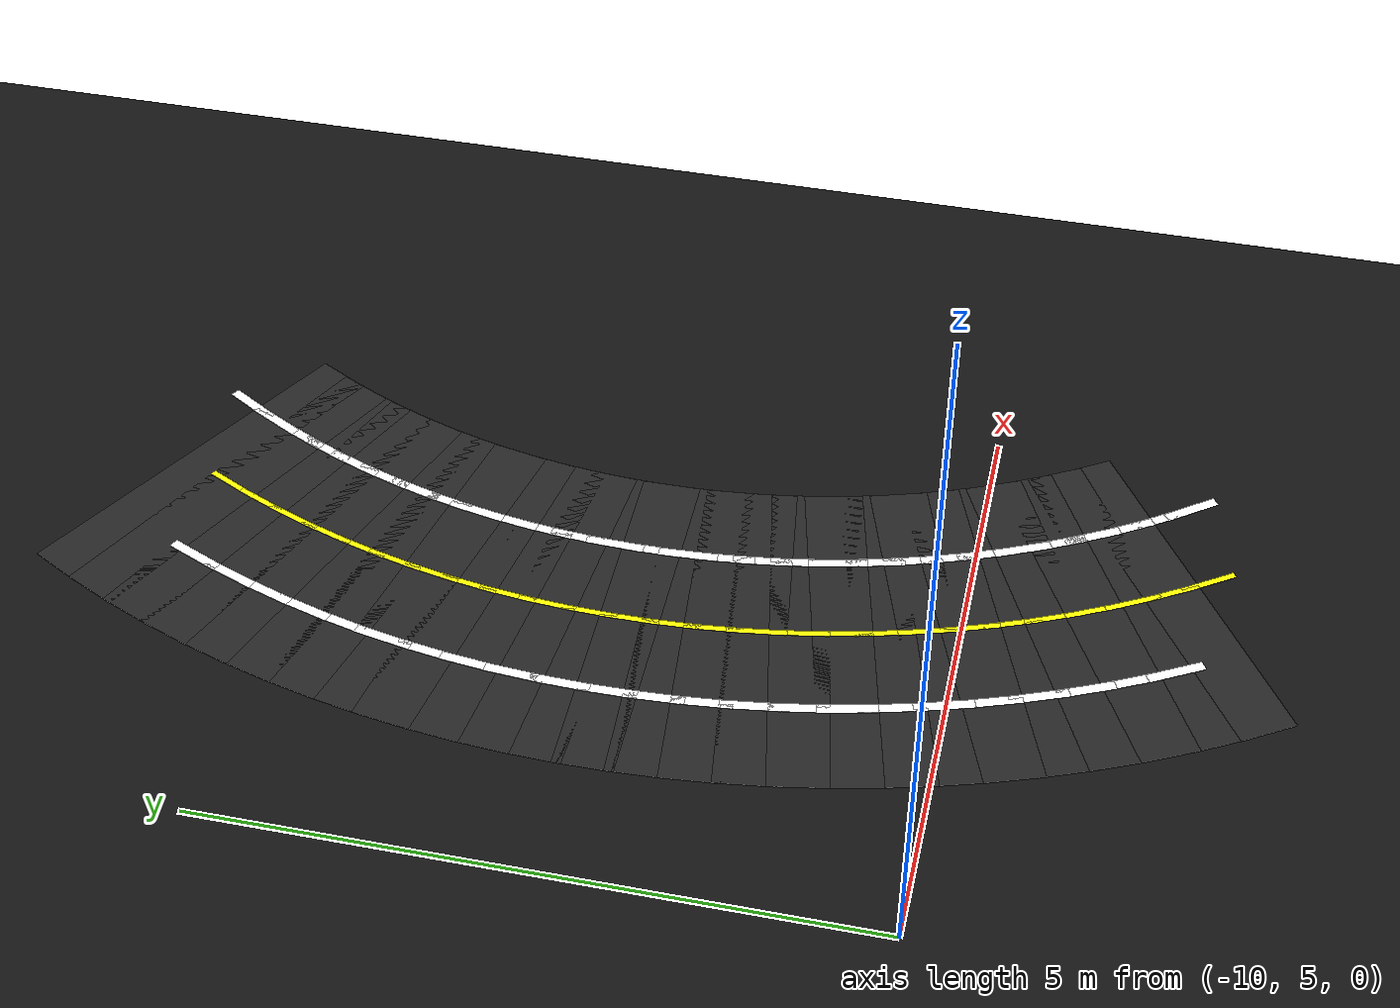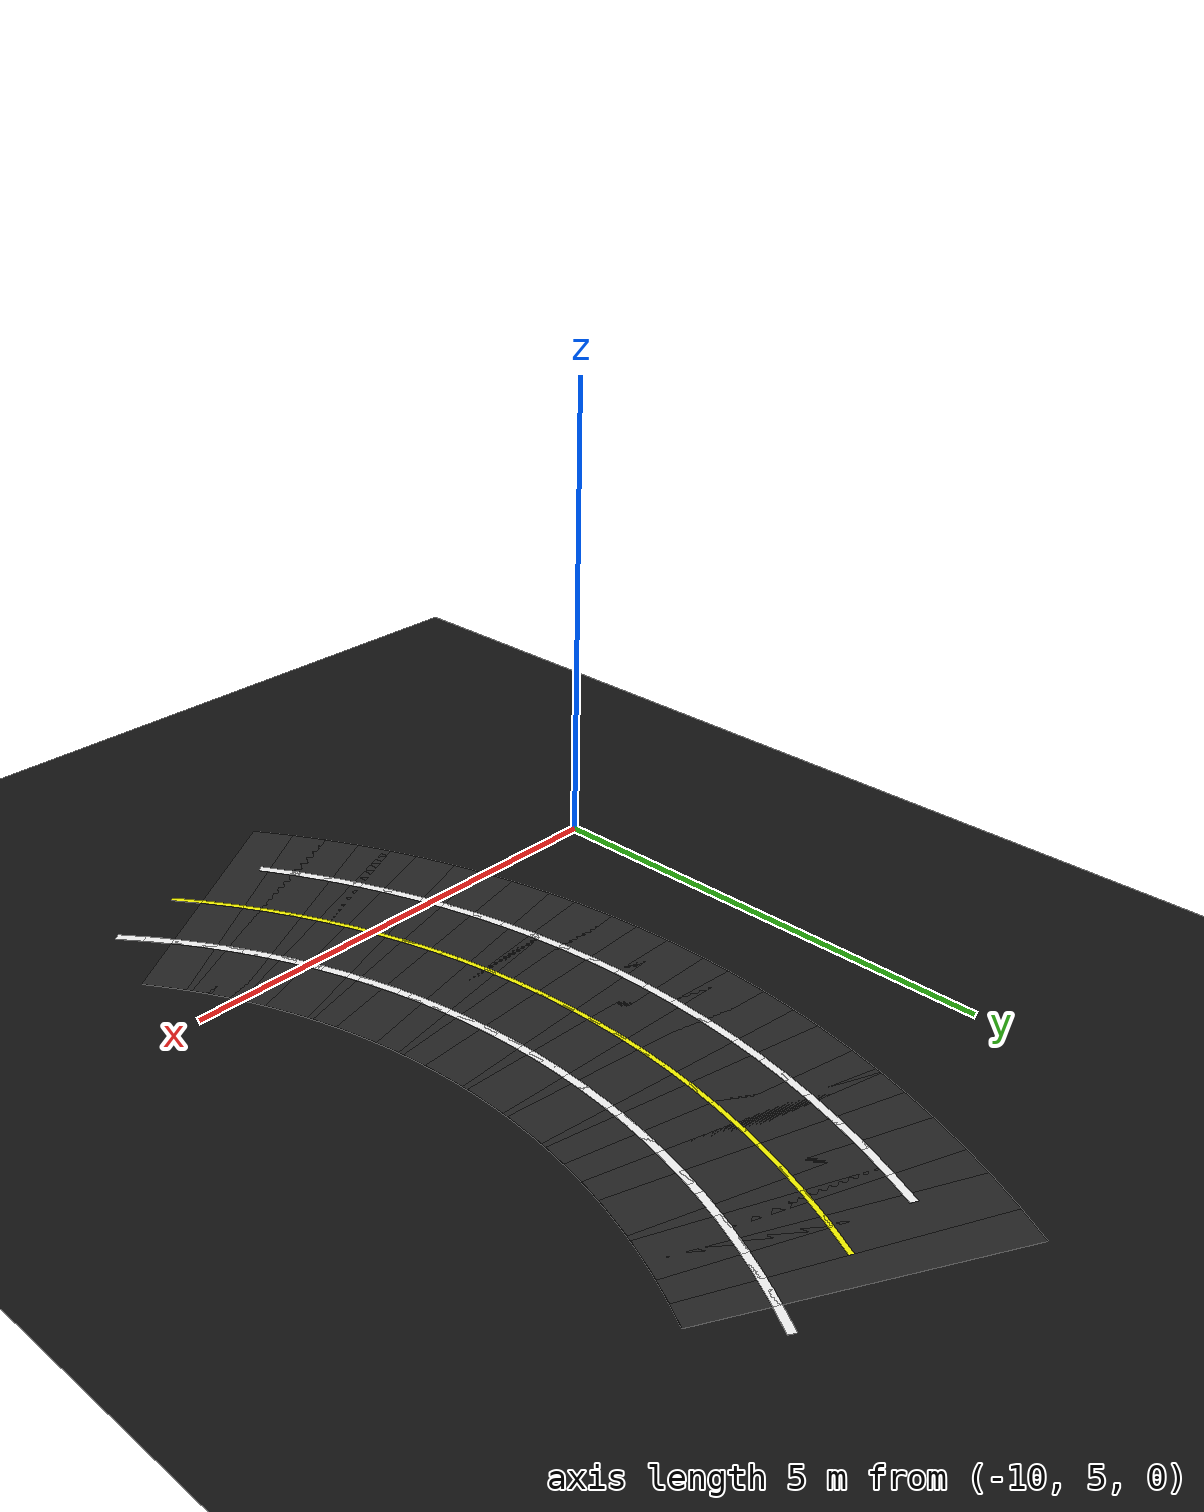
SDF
<sdf version="1.6">
 <world name="figure8_world">
  <model name="ground_plane">
   <static>true</static>
   <link name="link">
    <collision name="collision">
     <geometry><plane><normal>0 0 1</normal><size>100 100</size></plane></geometry>
    </collision>
    <visual name="visual">
     <geometry><plane><normal>0 0 1</normal><size>100 100</size></plane></geometry>
     <material><ambient>0.08 0.08 0.08 1</ambient><diffuse>0.08 0.08 0.08 1</diffuse></material>
    </visual>
   </link>
  </model>
  <model name="seg_00374">
   <static>true</static>
   <pose>-5.7977 10.9568 0.0030 0 0 4.1747</pose>
   <link name="link">
    <collision name="collision"><geometry><box><size>0.4500 0.0800 0.002</size></box></geometry></collision>
    <visual name="visual">
     <geometry><box><size>0.4500 0.0800 0.002</size></box></geometry>
     <material><ambient>1 1 1 1</ambient><diffuse>1 1 1 1</diffuse></material>
    </visual>
   </link>
  </model>
  <model name="seg_00376">
   <static>true</static>
   <pose>-6.5980 11.0659 0.0010 0 0 4.2169</pose>
   <link name="link">
    <collision name="collision"><geometry><box><size>0.4500 3.0000 0.002</size></box></geometry></collision>
    <visual name="visual">
     <geometry><box><size>0.4500 3.0000 0.002</size></box></geometry>
     <material><ambient>0.15 0.15 0.15 1</ambient><diffuse>0.15 0.15 0.15 1</diffuse></material>
    </visual>
   </link>
  </model>
  <model name="seg_00378">
   <static>true</static>
   <pose>-5.9382 10.7094 0.0030 0 0 4.2169</pose>
   <link name="link">
    <collision name="collision"><geometry><box><size>0.4500 0.0800 0.002</size></box></geometry></collision>
    <visual name="visual">
     <geometry><box><size>0.4500 0.0800 0.002</size></box></geometry>
     <material><ambient>1 1 1 1</ambient><diffuse>1 1 1 1</diffuse></material>
    </visual>
   </link>
  </model>
  <model name="seg_00380">
   <static>true</static>
   <pose>-6.7425 10.7846 0.0010 0 0 4.2591</pose>
   <link name="link">
    <collision name="collision"><geometry><box><size>0.4500 3.0000 0.002</size></box></geometry></collision>
    <visual name="visual">
     <geometry><box><size>0.4500 3.0000 0.002</size></box></geometry>
     <material><ambient>0.15 0.15 0.15 1</ambient><diffuse>0.15 0.15 0.15 1</diffuse></material>
    </visual>
   </link>
  </model>
  <model name="seg_00382">
   <static>true</static>
   <pose>-6.0682 10.4562 0.0030 0 0 4.2591</pose>
   <link name="link">
    <collision name="collision"><geometry><box><size>0.4500 0.0800 0.002</size></box></geometry></collision>
    <visual name="visual">
     <geometry><box><size>0.4500 0.0800 0.002</size></box></geometry>
     <material><ambient>1 1 1 1</ambient><diffuse>1 1 1 1</diffuse></material>
    </visual>
   </link>
  </model>
  <model name="seg_00383">
   <static>true</static>
   <pose>-6.7425 10.7846 0.0030 0 0 4.2591</pose>
   <link name="link">
    <collision name="collision"><geometry><box><size>0.4500 0.0500 0.002</size></box></geometry></collision>
    <visual name="visual">
     <geometry><box><size>0.4500 0.0500 0.002</size></box></geometry>
     <material><ambient>1 1 0 1</ambient><diffuse>1 1 0 1</diffuse></material>
    </visual>
   </link>
  </model>
  <model name="seg_00384">
   <static>true</static>
   <pose>-6.8750 10.4975 0.0010 0 0 4.3012</pose>
   <link name="link">
    <collision name="collision"><geometry><box><size>0.4500 3.0000 0.002</size></box></geometry></collision>
    <visual name="visual">
     <geometry><box><size>0.4500 3.0000 0.002</size></box></geometry>
     <material><ambient>0.15 0.15 0.15 1</ambient><diffuse>0.15 0.15 0.15 1</diffuse></material>
    </visual>
   </link>
  </model>
  <model name="seg_00385">
   <static>true</static>
   <pose>-7.5625 10.7972 0.0030 0 0 4.3012</pose>
   <link name="link">
    <collision name="collision"><geometry><box><size>0.4500 0.0800 0.002</size></box></geometry></collision>
    <visual name="visual">
     <geometry><box><size>0.4500 0.0800 0.002</size></box></geometry>
     <material><ambient>1 1 1 1</ambient><diffuse>1 1 1 1</diffuse></material>
    </visual>
   </link>
  </model>
  <model name="seg_00386">
   <static>true</static>
   <pose>-6.1875 10.1977 0.0030 0 0 4.3012</pose>
   <link name="link">
    <collision name="collision"><geometry><box><size>0.4500 0.0800 0.002</size></box></geometry></collision>
    <visual name="visual">
     <geometry><box><size>0.4500 0.0800 0.002</size></box></geometry>
     <material><ambient>1 1 1 1</ambient><diffuse>1 1 1 1</diffuse></material>
    </visual>
   </link>
  </model>
  <model name="seg_00387">
   <static>true</static>
   <pose>-6.8750 10.4975 0.0030 0 0 4.3012</pose>
   <link name="link">
    <collision name="collision"><geometry><box><size>0.4500 0.0500 0.002</size></box></geometry></collision>
    <visual name="visual">
     <geometry><box><size>0.4500 0.0500 0.002</size></box></geometry>
     <material><ambient>1 1 0 1</ambient><diffuse>1 1 0 1</diffuse></material>
    </visual>
   </link>
  </model>
  <model name="seg_00388">
   <static>true</static>
   <pose>-6.9952 10.2050 0.0010 0 0 4.3434</pose>
   <link name="link">
    <collision name="collision"><geometry><box><size>0.4500 3.0000 0.002</size></box></geometry></collision>
    <visual name="visual">
     <geometry><box><size>0.4500 3.0000 0.002</size></box></geometry>
     <material><ambient>0.15 0.15 0.15 1</ambient><diffuse>0.15 0.15 0.15 1</diffuse></material>
    </visual>
   </link>
  </model>
  <model name="seg_00389">
   <static>true</static>
   <pose>-7.6947 10.4755 0.0030 0 0 4.3434</pose>
   <link name="link">
    <collision name="collision"><geometry><box><size>0.4500 0.0800 0.002</size></box></geometry></collision>
    <visual name="visual">
     <geometry><box><size>0.4500 0.0800 0.002</size></box></geometry>
     <material><ambient>1 1 1 1</ambient><diffuse>1 1 1 1</diffuse></material>
    </visual>
   </link>
  </model>
  <model name="seg_00390">
   <static>true</static>
   <pose>-6.2957 9.9345 0.0030 0 0 4.3434</pose>
   <link name="link">
    <collision name="collision"><geometry><box><size>0.4500 0.0800 0.002</size></box></geometry></collision>
    <visual name="visual">
     <geometry><box><size>0.4500 0.0800 0.002</size></box></geometry>
     <material><ambient>1 1 1 1</ambient><diffuse>1 1 1 1</diffuse></material>
    </visual>
   </link>
  </model>
  <model name="seg_00391">
   <static>true</static>
   <pose>-6.9952 10.2050 0.0030 0 0 4.3434</pose>
   <link name="link">
    <collision name="collision"><geometry><box><size>0.4500 0.0500 0.002</size></box></geometry></collision>
    <visual name="visual">
     <geometry><box><size>0.4500 0.0500 0.002</size></box></geometry>
     <material><ambient>1 1 0 1</ambient><diffuse>1 1 0 1</diffuse></material>
    </visual>
   </link>
  </model>
  <model name="seg_00392">
   <static>true</static>
   <pose>-7.1030 9.9077 0.0010 0 0 4.3856</pose>
   <link name="link">
    <collision name="collision"><geometry><box><size>0.4500 3.0000 0.002</size></box></geometry></collision>
    <visual name="visual">
     <geometry><box><size>0.4500 3.0000 0.002</size></box></geometry>
     <material><ambient>0.15 0.15 0.15 1</ambient><diffuse>0.15 0.15 0.15 1</diffuse></material>
    </visual>
   </link>
  </model>
  <model name="seg_00393">
   <static>true</static>
   <pose>-7.8133 10.1484 0.0030 0 0 4.3856</pose>
   <link name="link">
    <collision name="collision"><geometry><box><size>0.4500 0.0800 0.002</size></box></geometry></collision>
    <visual name="visual">
     <geometry><box><size>0.4500 0.0800 0.002</size></box></geometry>
     <material><ambient>1 1 1 1</ambient><diffuse>1 1 1 1</diffuse></material>
    </visual>
   </link>
  </model>
  <model name="seg_00394">
   <static>true</static>
   <pose>-6.3927 9.6669 0.0030 0 0 4.3856</pose>
   <link name="link">
    <collision name="collision"><geometry><box><size>0.4500 0.0800 0.002</size></box></geometry></collision>
    <visual name="visual">
     <geometry><box><size>0.4500 0.0800 0.002</size></box></geometry>
     <material><ambient>1 1 1 1</ambient><diffuse>1 1 1 1</diffuse></material>
    </visual>
   </link>
  </model>
  <model name="seg_00395">
   <static>true</static>
   <pose>-7.1030 9.9077 0.0030 0 0 4.3856</pose>
   <link name="link">
    <collision name="collision"><geometry><box><size>0.4500 0.0500 0.002</size></box></geometry></collision>
    <visual name="visual">
     <geometry><box><size>0.4500 0.0500 0.002</size></box></geometry>
     <material><ambient>1 1 0 1</ambient><diffuse>1 1 0 1</diffuse></material>
    </visual>
   </link>
  </model>
  <model name="seg_00396">
   <static>true</static>
   <pose>-7.1982 9.6061 0.0010 0 0 4.4277</pose>
   <link name="link">
    <collision name="collision"><geometry><box><size>0.4500 3.0000 0.002</size></box></geometry></collision>
    <visual name="visual">
     <geometry><box><size>0.4500 3.0000 0.002</size></box></geometry>
     <material><ambient>0.15 0.15 0.15 1</ambient><diffuse>0.15 0.15 0.15 1</diffuse></material>
    </visual>
   </link>
  </model>
  <model name="seg_00397">
   <static>true</static>
   <pose>-7.9180 9.8167 0.0030 0 0 4.4277</pose>
   <link name="link">
    <collision name="collision"><geometry><box><size>0.4500 0.0800 0.002</size></box></geometry></collision>
    <visual name="visual">
     <geometry><box><size>0.4500 0.0800 0.002</size></box></geometry>
     <material><ambient>1 1 1 1</ambient><diffuse>1 1 1 1</diffuse></material>
    </visual>
   </link>
  </model>
  <model name="seg_00398">
   <static>true</static>
   <pose>-6.4784 9.3955 0.0030 0 0 4.4277</pose>
   <link name="link">
    <collision name="collision"><geometry><box><size>0.4500 0.0800 0.002</size></box></geometry></collision>
    <visual name="visual">
     <geometry><box><size>0.4500 0.0800 0.002</size></box></geometry>
     <material><ambient>1 1 1 1</ambient><diffuse>1 1 1 1</diffuse></material>
    </visual>
   </link>
  </model>
  <model name="seg_00399">
   <static>true</static>
   <pose>-7.1982 9.6061 0.0030 0 0 4.4277</pose>
   <link name="link">
    <collision name="collision"><geometry><box><size>0.4500 0.0500 0.002</size></box></geometry></collision>
    <visual name="visual">
     <geometry><box><size>0.4500 0.0500 0.002</size></box></geometry>
     <material><ambient>1 1 0 1</ambient><diffuse>1 1 0 1</diffuse></material>
    </visual>
   </link>
  </model>
  <model name="seg_00400">
   <static>true</static>
   <pose>-7.2806 9.3008 0.0010 0 0 4.4699</pose>
   <link name="link">
    <collision name="collision"><geometry><box><size>0.4500 3.0000 0.002</size></box></geometry></collision>
    <visual name="visual">
     <geometry><box><size>0.4500 3.0000 0.002</size></box></geometry>
     <material><ambient>0.15 0.15 0.15 1</ambient><diffuse>0.15 0.15 0.15 1</diffuse></material>
    </visual>
   </link>
  </model>
  <model name="seg_00401">
   <static>true</static>
   <pose>-8.0087 9.4808 0.0030 0 0 4.4699</pose>
   <link name="link">
    <collision name="collision"><geometry><box><size>0.4500 0.0800 0.002</size></box></geometry></collision>
    <visual name="visual">
     <geometry><box><size>0.4500 0.0800 0.002</size></box></geometry>
     <material><ambient>1 1 1 1</ambient><diffuse>1 1 1 1</diffuse></material>
    </visual>
   </link>
  </model>
  <model name="seg_00402">
   <static>true</static>
   <pose>-6.5525 9.1207 0.0030 0 0 4.4699</pose>
   <link name="link">
    <collision name="collision"><geometry><box><size>0.4500 0.0800 0.002</size></box></geometry></collision>
    <visual name="visual">
     <geometry><box><size>0.4500 0.0800 0.002</size></box></geometry>
     <material><ambient>1 1 1 1</ambient><diffuse>1 1 1 1</diffuse></material>
    </visual>
   </link>
  </model>
  <model name="seg_00403">
   <static>true</static>
   <pose>-7.2806 9.3008 0.0030 0 0 4.4699</pose>
   <link name="link">
    <collision name="collision"><geometry><box><size>0.4500 0.0500 0.002</size></box></geometry></collision>
    <visual name="visual">
     <geometry><box><size>0.4500 0.0500 0.002</size></box></geometry>
     <material><ambient>1 1 0 1</ambient><diffuse>1 1 0 1</diffuse></material>
    </visual>
   </link>
  </model>
  <model name="seg_00404">
   <static>true</static>
   <pose>-7.3500 8.9922 0.0010 0 0 4.5121</pose>
   <link name="link">
    <collision name="collision"><geometry><box><size>0.4500 3.0000 0.002</size></box></geometry></collision>
    <visual name="visual">
     <geometry><box><size>0.4500 3.0000 0.002</size></box></geometry>
     <material><ambient>0.15 0.15 0.15 1</ambient><diffuse>0.15 0.15 0.15 1</diffuse></material>
    </visual>
   </link>
  </model>
  <model name="seg_00405">
   <static>true</static>
   <pose>-8.0851 9.1415 0.0030 0 0 4.5121</pose>
   <link name="link">
    <collision name="collision"><geometry><box><size>0.4500 0.0800 0.002</size></box></geometry></collision>
    <visual name="visual">
     <geometry><box><size>0.4500 0.0800 0.002</size></box></geometry>
     <material><ambient>1 1 1 1</ambient><diffuse>1 1 1 1</diffuse></material>
    </visual>
   </link>
  </model>
  <model name="seg_00406">
   <static>true</static>
   <pose>-6.6150 8.8430 0.0030 0 0 4.5121</pose>
   <link name="link">
    <collision name="collision"><geometry><box><size>0.4500 0.0800 0.002</size></box></geometry></collision>
    <visual name="visual">
     <geometry><box><size>0.4500 0.0800 0.002</size></box></geometry>
     <material><ambient>1 1 1 1</ambient><diffuse>1 1 1 1</diffuse></material>
    </visual>
   </link>
  </model>
  <model name="seg_00407">
   <static>true</static>
   <pose>-7.3500 8.9922 0.0030 0 0 4.5121</pose>
   <link name="link">
    <collision name="collision"><geometry><box><size>0.4500 0.0500 0.002</size></box></geometry></collision>
    <visual name="visual">
     <geometry><box><size>0.4500 0.0500 0.002</size></box></geometry>
     <material><ambient>1 1 0 1</ambient><diffuse>1 1 0 1</diffuse></material>
    </visual>
   </link>
  </model>
  <model name="seg_00408">
   <static>true</static>
   <pose>-7.4064 8.6811 0.0010 0 0 4.5543</pose>
   <link name="link">
    <collision name="collision"><geometry><box><size>0.4500 3.0000 0.002</size></box></geometry></collision>
    <visual name="visual">
     <geometry><box><size>0.4500 3.0000 0.002</size></box></geometry>
     <material><ambient>0.15 0.15 0.15 1</ambient><diffuse>0.15 0.15 0.15 1</diffuse></material>
    </visual>
   </link>
  </model>
  <model name="seg_00409">
   <static>true</static>
   <pose>-8.1471 8.7992 0.0030 0 0 4.5543</pose>
   <link name="link">
    <collision name="collision"><geometry><box><size>0.4500 0.0800 0.002</size></box></geometry></collision>
    <visual name="visual">
     <geometry><box><size>0.4500 0.0800 0.002</size></box></geometry>
     <material><ambient>1 1 1 1</ambient><diffuse>1 1 1 1</diffuse></material>
    </visual>
   </link>
  </model>
  <model name="seg_00410">
   <static>true</static>
   <pose>-6.6658 8.5630 0.0030 0 0 4.5543</pose>
   <link name="link">
    <collision name="collision"><geometry><box><size>0.4500 0.0800 0.002</size></box></geometry></collision>
    <visual name="visual">
     <geometry><box><size>0.4500 0.0800 0.002</size></box></geometry>
     <material><ambient>1 1 1 1</ambient><diffuse>1 1 1 1</diffuse></material>
    </visual>
   </link>
  </model>
  <model name="seg_00411">
   <static>true</static>
   <pose>-7.4064 8.6811 0.0030 0 0 4.5543</pose>
   <link name="link">
    <collision name="collision"><geometry><box><size>0.4500 0.0500 0.002</size></box></geometry></collision>
    <visual name="visual">
     <geometry><box><size>0.4500 0.0500 0.002</size></box></geometry>
     <material><ambient>1 1 0 1</ambient><diffuse>1 1 0 1</diffuse></material>
    </visual>
   </link>
  </model>
  <model name="seg_00412">
   <static>true</static>
   <pose>-7.4496 8.3678 0.0010 0 0 4.5964</pose>
   <link name="link">
    <collision name="collision"><geometry><box><size>0.4500 3.0000 0.002</size></box></geometry></collision>
    <visual name="visual">
     <geometry><box><size>0.4500 3.0000 0.002</size></box></geometry>
     <material><ambient>0.15 0.15 0.15 1</ambient><diffuse>0.15 0.15 0.15 1</diffuse></material>
    </visual>
   </link>
  </model>
  <model name="seg_00413">
   <static>true</static>
   <pose>-8.1946 8.4546 0.0030 0 0 4.5964</pose>
   <link name="link">
    <collision name="collision"><geometry><box><size>0.4500 0.0800 0.002</size></box></geometry></collision>
    <visual name="visual">
     <geometry><box><size>0.4500 0.0800 0.002</size></box></geometry>
     <material><ambient>1 1 1 1</ambient><diffuse>1 1 1 1</diffuse></material>
    </visual>
   </link>
  </model>
  <model name="seg_00414">
   <static>true</static>
   <pose>-6.7047 8.2810 0.0030 0 0 4.5964</pose>
   <link name="link">
    <collision name="collision"><geometry><box><size>0.4500 0.0800 0.002</size></box></geometry></collision>
    <visual name="visual">
     <geometry><box><size>0.4500 0.0800 0.002</size></box></geometry>
     <material><ambient>1 1 1 1</ambient><diffuse>1 1 1 1</diffuse></material>
    </visual>
   </link>
  </model>
  <model name="seg_00415">
   <static>true</static>
   <pose>-7.4496 8.3678 0.0030 0 0 4.5964</pose>
   <link name="link">
    <collision name="collision"><geometry><box><size>0.4500 0.0500 0.002</size></box></geometry></collision>
    <visual name="visual">
     <geometry><box><size>0.4500 0.0500 0.002</size></box></geometry>
     <material><ambient>1 1 0 1</ambient><diffuse>1 1 0 1</diffuse></material>
    </visual>
   </link>
  </model>
  <model name="seg_00416">
   <static>true</static>
   <pose>-7.4796 8.0530 0.0010 0 0 4.6386</pose>
   <link name="link">
    <collision name="collision"><geometry><box><size>0.4500 3.0000 0.002</size></box></geometry></collision>
    <visual name="visual">
     <geometry><box><size>0.4500 3.0000 0.002</size></box></geometry>
     <material><ambient>0.15 0.15 0.15 1</ambient><diffuse>0.15 0.15 0.15 1</diffuse></material>
    </visual>
   </link>
  </model>
  <model name="seg_00417">
   <static>true</static>
   <pose>-8.2275 8.1083 0.0030 0 0 4.6386</pose>
   <link name="link">
    <collision name="collision"><geometry><box><size>0.4500 0.0800 0.002</size></box></geometry></collision>
    <visual name="visual">
     <geometry><box><size>0.4500 0.0800 0.002</size></box></geometry>
     <material><ambient>1 1 1 1</ambient><diffuse>1 1 1 1</diffuse></material>
    </visual>
   </link>
  </model>
  <model name="seg_00418">
   <static>true</static>
   <pose>-6.7316 7.9977 0.0030 0 0 4.6386</pose>
   <link name="link">
    <collision name="collision"><geometry><box><size>0.4500 0.0800 0.002</size></box></geometry></collision>
    <visual name="visual">
     <geometry><box><size>0.4500 0.0800 0.002</size></box></geometry>
     <material><ambient>1 1 1 1</ambient><diffuse>1 1 1 1</diffuse></material>
    </visual>
   </link>
  </model>
  <model name="seg_00419">
   <static>true</static>
   <pose>-7.4796 8.0530 0.0030 0 0 4.6386</pose>
   <link name="link">
    <collision name="collision"><geometry><box><size>0.4500 0.0500 0.002</size></box></geometry></collision>
    <visual name="visual">
     <geometry><box><size>0.4500 0.0500 0.002</size></box></geometry>
     <material><ambient>1 1 0 1</ambient><diffuse>1 1 0 1</diffuse></material>
    </visual>
   </link>
  </model>
  <model name="seg_00420">
   <static>true</static>
   <pose>-7.4962 7.7372 0.0010 0 0 4.6808</pose>
   <link name="link">
    <collision name="collision"><geometry><box><size>0.4500 3.0000 0.002</size></box></geometry></collision>
    <visual name="visual">
     <geometry><box><size>0.4500 3.0000 0.002</size></box></geometry>
     <material><ambient>0.15 0.15 0.15 1</ambient><diffuse>0.15 0.15 0.15 1</diffuse></material>
    </visual>
   </link>
  </model>
  <model name="seg_00421">
   <static>true</static>
   <pose>-8.2459 7.7609 0.0030 0 0 4.6808</pose>
   <link name="link">
    <collision name="collision"><geometry><box><size>0.4500 0.0800 0.002</size></box></geometry></collision>
    <visual name="visual">
     <geometry><box><size>0.4500 0.0800 0.002</size></box></geometry>
     <material><ambient>1 1 1 1</ambient><diffuse>1 1 1 1</diffuse></material>
    </visual>
   </link>
  </model>
  <model name="seg_00422">
   <static>true</static>
   <pose>-6.7466 7.7134 0.0030 0 0 4.6808</pose>
   <link name="link">
    <collision name="collision"><geometry><box><size>0.4500 0.0800 0.002</size></box></geometry></collision>
    <visual name="visual">
     <geometry><box><size>0.4500 0.0800 0.002</size></box></geometry>
     <material><ambient>1 1 1 1</ambient><diffuse>1 1 1 1</diffuse></material>
    </visual>
   </link>
  </model>
  <model name="seg_00423">
   <static>true</static>
   <pose>-7.4962 7.7372 0.0030 0 0 4.6808</pose>
   <link name="link">
    <collision name="collision"><geometry><box><size>0.4500 0.0500 0.002</size></box></geometry></collision>
    <visual name="visual">
     <geometry><box><size>0.4500 0.0500 0.002</size></box></geometry>
     <material><ambient>1 1 0 1</ambient><diffuse>1 1 0 1</diffuse></material>
    </visual>
   </link>
  </model>
  <model name="seg_00424">
   <static>true</static>
   <pose>-7.4996 7.4209 0.0010 0 0 4.7229</pose>
   <link name="link">
    <collision name="collision"><geometry><box><size>0.4500 3.0000 0.002</size></box></geometry></collision>
    <visual name="visual">
     <geometry><box><size>0.4500 3.0000 0.002</size></box></geometry>
     <material><ambient>0.15 0.15 0.15 1</ambient><diffuse>0.15 0.15 0.15 1</diffuse></material>
    </visual>
   </link>
  </model>
  <model name="seg_00425">
   <static>true</static>
   <pose>-8.2495 7.4130 0.0030 0 0 4.7229</pose>
   <link name="link">
    <collision name="collision"><geometry><box><size>0.4500 0.0800 0.002</size></box></geometry></collision>
    <visual name="visual">
     <geometry><box><size>0.4500 0.0800 0.002</size></box></geometry>
     <material><ambient>1 1 1 1</ambient><diffuse>1 1 1 1</diffuse></material>
    </visual>
   </link>
  </model>
  <model name="seg_00426">
   <static>true</static>
   <pose>-6.7496 7.4288 0.0030 0 0 4.7229</pose>
   <link name="link">
    <collision name="collision"><geometry><box><size>0.4500 0.0800 0.002</size></box></geometry></collision>
    <visual name="visual">
     <geometry><box><size>0.4500 0.0800 0.002</size></box></geometry>
     <material><ambient>1 1 1 1</ambient><diffuse>1 1 1 1</diffuse></material>
    </visual>
   </link>
  </model>
  <model name="seg_00427">
   <static>true</static>
   <pose>-7.4996 7.4209 0.0030 0 0 4.7229</pose>
   <link name="link">
    <collision name="collision"><geometry><box><size>0.4500 0.0500 0.002</size></box></geometry></collision>
    <visual name="visual">
     <geometry><box><size>0.4500 0.0500 0.002</size></box></geometry>
     <material><ambient>1 1 0 1</ambient><diffuse>1 1 0 1</diffuse></material>
    </visual>
   </link>
  </model>
  <model name="seg_00428">
   <static>true</static>
   <pose>-7.4896 7.1048 0.0010 0 0 4.7651</pose>
   <link name="link">
    <collision name="collision"><geometry><box><size>0.4500 3.0000 0.002</size></box></geometry></collision>
    <visual name="visual">
     <geometry><box><size>0.4500 3.0000 0.002</size></box></geometry>
     <material><ambient>0.15 0.15 0.15 1</ambient><diffuse>0.15 0.15 0.15 1</diffuse></material>
    </visual>
   </link>
  </model>
  <model name="seg_00429">
   <static>true</static>
   <pose>-8.2385 7.0653 0.0030 0 0 4.7651</pose>
   <link name="link">
    <collision name="collision"><geometry><box><size>0.4500 0.0800 0.002</size></box></geometry></collision>
    <visual name="visual">
     <geometry><box><size>0.4500 0.0800 0.002</size></box></geometry>
     <material><ambient>1 1 1 1</ambient><diffuse>1 1 1 1</diffuse></material>
    </visual>
   </link>
  </model>
  <model name="seg_00430">
   <static>true</static>
   <pose>-6.7406 7.1444 0.0030 0 0 4.7651</pose>
   <link name="link">
    <collision name="collision"><geometry><box><size>0.4500 0.0800 0.002</size></box></geometry></collision>
    <visual name="visual">
     <geometry><box><size>0.4500 0.0800 0.002</size></box></geometry>
     <material><ambient>1 1 1 1</ambient><diffuse>1 1 1 1</diffuse></material>
    </visual>
   </link>
  </model>
  <model name="seg_00431">
   <static>true</static>
   <pose>-7.4896 7.1048 0.0030 0 0 4.7651</pose>
   <link name="link">
    <collision name="collision"><geometry><box><size>0.4500 0.0500 0.002</size></box></geometry></collision>
    <visual name="visual">
     <geometry><box><size>0.4500 0.0500 0.002</size></box></geometry>
     <material><ambient>1 1 0 1</ambient><diffuse>1 1 0 1</diffuse></material>
    </visual>
   </link>
  </model>
  <model name="seg_00432">
   <static>true</static>
   <pose>-7.4663 6.7895 0.0010 0 0 4.8073</pose>
   <link name="link">
    <collision name="collision"><geometry><box><size>0.4500 3.0000 0.002</size></box></geometry></collision>
    <visual name="visual">
     <geometry><box><size>0.4500 3.0000 0.002</size></box></geometry>
     <material><ambient>0.15 0.15 0.15 1</ambient><diffuse>0.15 0.15 0.15 1</diffuse></material>
    </visual>
   </link>
  </model>
  <model name="seg_00433">
   <static>true</static>
   <pose>-8.2129 6.7184 0.0030 0 0 4.8073</pose>
   <link name="link">
    <collision name="collision"><geometry><box><size>0.4500 0.0800 0.002</size></box></geometry></collision>
    <visual name="visual">
     <geometry><box><size>0.4500 0.0800 0.002</size></box></geometry>
     <material><ambient>1 1 1 1</ambient><diffuse>1 1 1 1</diffuse></material>
    </visual>
   </link>
  </model>
  <model name="seg_00434">
   <static>true</static>
   <pose>-6.7196 6.8605 0.0030 0 0 4.8073</pose>
   <link name="link">
    <collision name="collision"><geometry><box><size>0.4500 0.0800 0.002</size></box></geometry></collision>
    <visual name="visual">
     <geometry><box><size>0.4500 0.0800 0.002</size></box></geometry>
     <material><ambient>1 1 1 1</ambient><diffuse>1 1 1 1</diffuse></material>
    </visual>
   </link>
  </model>
  <model name="seg_00435">
   <static>true</static>
   <pose>-7.4663 6.7895 0.0030 0 0 4.8073</pose>
   <link name="link">
    <collision name="collision"><geometry><box><size>0.4500 0.0500 0.002</size></box></geometry></collision>
    <visual name="visual">
     <geometry><box><size>0.4500 0.0500 0.002</size></box></geometry>
     <material><ambient>1 1 0 1</ambient><diffuse>1 1 0 1</diffuse></material>
    </visual>
   </link>
  </model>
  <model name="seg_00436">
   <static>true</static>
   <pose>-7.4297 6.4753 0.0010 0 0 4.8494</pose>
   <link name="link">
    <collision name="collision"><geometry><box><size>0.4500 3.0000 0.002</size></box></geometry></collision>
    <visual name="visual">
     <geometry><box><size>0.4500 3.0000 0.002</size></box></geometry>
     <material><ambient>0.15 0.15 0.15 1</ambient><diffuse>0.15 0.15 0.15 1</diffuse></material>
    </visual>
   </link>
  </model>
  <model name="seg_00437">
   <static>true</static>
   <pose>-8.1726 6.3729 0.0030 0 0 4.8494</pose>
   <link name="link">
    <collision name="collision"><geometry><box><size>0.4500 0.0800 0.002</size></box></geometry></collision>
    <visual name="visual">
     <geometry><box><size>0.4500 0.0800 0.002</size></box></geometry>
     <material><ambient>1 1 1 1</ambient><diffuse>1 1 1 1</diffuse></material>
    </visual>
   </link>
  </model>
  <model name="seg_00438">
   <static>true</static>
   <pose>-6.6867 6.5778 0.0030 0 0 4.8494</pose>
   <link name="link">
    <collision name="collision"><geometry><box><size>0.4500 0.0800 0.002</size></box></geometry></collision>
    <visual name="visual">
     <geometry><box><size>0.4500 0.0800 0.002</size></box></geometry>
     <material><ambient>1 1 1 1</ambient><diffuse>1 1 1 1</diffuse></material>
    </visual>
   </link>
  </model>
  <model name="seg_00439">
   <static>true</static>
   <pose>-7.4297 6.4753 0.0030 0 0 4.8494</pose>
   <link name="link">
    <collision name="collision"><geometry><box><size>0.4500 0.0500 0.002</size></box></geometry></collision>
    <visual name="visual">
     <geometry><box><size>0.4500 0.0500 0.002</size></box></geometry>
     <material><ambient>1 1 0 1</ambient><diffuse>1 1 0 1</diffuse></material>
    </visual>
   </link>
  </model>
  <model name="seg_00440">
   <static>true</static>
   <pose>-7.3799 6.1630 0.0010 0 0 4.8916</pose>
   <link name="link">
    <collision name="collision"><geometry><box><size>0.4500 3.0000 0.002</size></box></geometry></collision>
    <visual name="visual">
     <geometry><box><size>0.4500 3.0000 0.002</size></box></geometry>
     <material><ambient>0.15 0.15 0.15 1</ambient><diffuse>0.15 0.15 0.15 1</diffuse></material>
    </visual>
   </link>
  </model>
  <model name="seg_00441">
   <static>true</static>
   <pose>-8.1179 6.0294 0.0030 0 0 4.8916</pose>
   <link name="link">
    <collision name="collision"><geometry><box><size>0.4500 0.0800 0.002</size></box></geometry></collision>
    <visual name="visual">
     <geometry><box><size>0.4500 0.0800 0.002</size></box></geometry>
     <material><ambient>1 1 1 1</ambient><diffuse>1 1 1 1</diffuse></material>
    </visual>
   </link>
  </model>
  <model name="seg_00442">
   <static>true</static>
   <pose>-6.6419 6.2967 0.0030 0 0 4.8916</pose>
   <link name="link">
    <collision name="collision"><geometry><box><size>0.4500 0.0800 0.002</size></box></geometry></collision>
    <visual name="visual">
     <geometry><box><size>0.4500 0.0800 0.002</size></box></geometry>
     <material><ambient>1 1 1 1</ambient><diffuse>1 1 1 1</diffuse></material>
    </visual>
   </link>
  </model>
  <model name="seg_00443">
   <static>true</static>
   <pose>-7.3799 6.1630 0.0030 0 0 4.8916</pose>
   <link name="link">
    <collision name="collision"><geometry><box><size>0.4500 0.0500 0.002</size></box></geometry></collision>
    <visual name="visual">
     <geometry><box><size>0.4500 0.0500 0.002</size></box></geometry>
     <material><ambient>1 1 0 1</ambient><diffuse>1 1 0 1</diffuse></material>
    </visual>
   </link>
  </model>
  <model name="seg_00444">
   <static>true</static>
   <pose>-7.3170 5.8531 0.0010 0 0 4.9338</pose>
   <link name="link">
    <collision name="collision"><geometry><box><size>0.4500 3.0000 0.002</size></box></geometry></collision>
    <visual name="visual">
     <geometry><box><size>0.4500 3.0000 0.002</size></box></geometry>
     <material><ambient>0.15 0.15 0.15 1</ambient><diffuse>0.15 0.15 0.15 1</diffuse></material>
    </visual>
   </link>
  </model>
  <model name="seg_00445">
   <static>true</static>
   <pose>-8.0486 5.6884 0.0030 0 0 4.9338</pose>
   <link name="link">
    <collision name="collision"><geometry><box><size>0.4500 0.0800 0.002</size></box></geometry></collision>
    <visual name="visual">
     <geometry><box><size>0.4500 0.0800 0.002</size></box></geometry>
     <material><ambient>1 1 1 1</ambient><diffuse>1 1 1 1</diffuse></material>
    </visual>
   </link>
  </model>
  <model name="seg_00446">
   <static>true</static>
   <pose>-6.5853 6.0178 0.0030 0 0 4.9338</pose>
   <link name="link">
    <collision name="collision"><geometry><box><size>0.4500 0.0800 0.002</size></box></geometry></collision>
    <visual name="visual">
     <geometry><box><size>0.4500 0.0800 0.002</size></box></geometry>
     <material><ambient>1 1 1 1</ambient><diffuse>1 1 1 1</diffuse></material>
    </visual>
   </link>
  </model>
  <model name="seg_00447">
   <static>true</static>
   <pose>-7.3170 5.8531 0.0030 0 0 4.9338</pose>
   <link name="link">
    <collision name="collision"><geometry><box><size>0.4500 0.0500 0.002</size></box></geometry></collision>
    <visual name="visual">
     <geometry><box><size>0.4500 0.0500 0.002</size></box></geometry>
     <material><ambient>1 1 0 1</ambient><diffuse>1 1 0 1</diffuse></material>
    </visual>
   </link>
  </model>
  <model name="seg_00448">
   <static>true</static>
   <pose>-7.2410 5.5461 0.0010 0 0 4.9759</pose>
   <link name="link">
    <collision name="collision"><geometry><box><size>0.4500 3.0000 0.002</size></box></geometry></collision>
    <visual name="visual">
     <geometry><box><size>0.4500 3.0000 0.002</size></box></geometry>
     <material><ambient>0.15 0.15 0.15 1</ambient><diffuse>0.15 0.15 0.15 1</diffuse></material>
    </visual>
   </link>
  </model>
  <model name="seg_00449">
   <static>true</static>
   <pose>-7.9651 5.3507 0.0030 0 0 4.9759</pose>
   <link name="link">
    <collision name="collision"><geometry><box><size>0.4500 0.0800 0.002</size></box></geometry></collision>
    <visual name="visual">
     <geometry><box><size>0.4500 0.0800 0.002</size></box></geometry>
     <material><ambient>1 1 1 1</ambient><diffuse>1 1 1 1</diffuse></material>
    </visual>
   </link>
  </model>
  <model name="seg_00450">
   <static>true</static>
   <pose>-6.5169 5.7415 0.0030 0 0 4.9759</pose>
   <link name="link">
    <collision name="collision"><geometry><box><size>0.4500 0.0800 0.002</size></box></geometry></collision>
    <visual name="visual">
     <geometry><box><size>0.4500 0.0800 0.002</size></box></geometry>
     <material><ambient>1 1 1 1</ambient><diffuse>1 1 1 1</diffuse></material>
    </visual>
   </link>
  </model>
  <model name="seg_00451">
   <static>true</static>
   <pose>-7.2410 5.5461 0.0030 0 0 4.9759</pose>
   <link name="link">
    <collision name="collision"><geometry><box><size>0.4500 0.0500 0.002</size></box></geometry></collision>
    <visual name="visual">
     <geometry><box><size>0.4500 0.0500 0.002</size></box></geometry>
     <material><ambient>1 1 0 1</ambient><diffuse>1 1 0 1</diffuse></material>
    </visual>
   </link>
  </model>
  <model name="seg_00452">
   <static>true</static>
   <pose>-7.1522 5.2426 0.0010 0 0 5.0181</pose>
   <link name="link">
    <collision name="collision"><geometry><box><size>0.4500 3.0000 0.002</size></box></geometry></collision>
    <visual name="visual">
     <geometry><box><size>0.4500 3.0000 0.002</size></box></geometry>
     <material><ambient>0.15 0.15 0.15 1</ambient><diffuse>0.15 0.15 0.15 1</diffuse></material>
    </visual>
   </link>
  </model>
  <model name="seg_00453">
   <static>true</static>
   <pose>-7.8674 5.0169 0.0030 0 0 5.0181</pose>
   <link name="link">
    <collision name="collision"><geometry><box><size>0.4500 0.0800 0.002</size></box></geometry></collision>
    <visual name="visual">
     <geometry><box><size>0.4500 0.0800 0.002</size></box></geometry>
     <material><ambient>1 1 1 1</ambient><diffuse>1 1 1 1</diffuse></material>
    </visual>
   </link>
  </model>
  <model name="seg_00454">
   <static>true</static>
   <pose>-6.4370 5.4684 0.0030 0 0 5.0181</pose>
   <link name="link">
    <collision name="collision"><geometry><box><size>0.4500 0.0800 0.002</size></box></geometry></collision>
    <visual name="visual">
     <geometry><box><size>0.4500 0.0800 0.002</size></box></geometry>
     <material><ambient>1 1 1 1</ambient><diffuse>1 1 1 1</diffuse></material>
    </visual>
   </link>
  </model>
  <model name="seg_00455">
   <static>true</static>
   <pose>-7.1522 5.2426 0.0030 0 0 5.0181</pose>
   <link name="link">
    <collision name="collision"><geometry><box><size>0.4500 0.0500 0.002</size></box></geometry></collision>
    <visual name="visual">
     <geometry><box><size>0.4500 0.0500 0.002</size></box></geometry>
     <material><ambient>1 1 0 1</ambient><diffuse>1 1 0 1</diffuse></material>
    </visual>
   </link>
  </model>
  <model name="seg_00456">
   <static>true</static>
   <pose>-7.0507 4.9431 0.0010 0 0 5.0603</pose>
   <link name="link">
    <collision name="collision"><geometry><box><size>0.4500 3.0000 0.002</size></box></geometry></collision>
    <visual name="visual">
     <geometry><box><size>0.4500 3.0000 0.002</size></box></geometry>
     <material><ambient>0.15 0.15 0.15 1</ambient><diffuse>0.15 0.15 0.15 1</diffuse></material>
    </visual>
   </link>
  </model>
  <model name="seg_00457">
   <static>true</static>
   <pose>-7.7558 4.6874 0.0030 0 0 5.0603</pose>
   <link name="link">
    <collision name="collision"><geometry><box><size>0.4500 0.0800 0.002</size></box></geometry></collision>
    <visual name="visual">
     <geometry><box><size>0.4500 0.0800 0.002</size></box></geometry>
     <material><ambient>1 1 1 1</ambient><diffuse>1 1 1 1</diffuse></material>
    </visual>
   </link>
  </model>
  <model name="seg_00458">
   <static>true</static>
   <pose>-6.3456 5.1988 0.0030 0 0 5.0603</pose>
   <link name="link">
    <collision name="collision"><geometry><box><size>0.4500 0.0800 0.002</size></box></geometry></collision>
    <visual name="visual">
     <geometry><box><size>0.4500 0.0800 0.002</size></box></geometry>
     <material><ambient>1 1 1 1</ambient><diffuse>1 1 1 1</diffuse></material>
    </visual>
   </link>
  </model>
  <model name="seg_00459">
   <static>true</static>
   <pose>-7.0507 4.9431 0.0030 0 0 5.0603</pose>
   <link name="link">
    <collision name="collision"><geometry><box><size>0.4500 0.0500 0.002</size></box></geometry></collision>
    <visual name="visual">
     <geometry><box><size>0.4500 0.0500 0.002</size></box></geometry>
     <material><ambient>1 1 0 1</ambient><diffuse>1 1 0 1</diffuse></material>
    </visual>
   </link>
  </model>
  <model name="seg_00460">
   <static>true</static>
   <pose>-6.9366 4.6481 0.0010 0 0 5.1025</pose>
   <link name="link">
    <collision name="collision"><geometry><box><size>0.4500 3.0000 0.002</size></box></geometry></collision>
    <visual name="visual">
     <geometry><box><size>0.4500 3.0000 0.002</size></box></geometry>
     <material><ambient>0.15 0.15 0.15 1</ambient><diffuse>0.15 0.15 0.15 1</diffuse></material>
    </visual>
   </link>
  </model>
  <model name="seg_00461">
   <static>true</static>
   <pose>-7.6303 4.3630 0.0030 0 0 5.1025</pose>
   <link name="link">
    <collision name="collision"><geometry><box><size>0.4500 0.0800 0.002</size></box></geometry></collision>
    <visual name="visual">
     <geometry><box><size>0.4500 0.0800 0.002</size></box></geometry>
     <material><ambient>1 1 1 1</ambient><diffuse>1 1 1 1</diffuse></material>
    </visual>
   </link>
  </model>
  <model name="seg_00462">
   <static>true</static>
   <pose>-6.2430 4.9333 0.0030 0 0 5.1025</pose>
   <link name="link">
    <collision name="collision"><geometry><box><size>0.4500 0.0800 0.002</size></box></geometry></collision>
    <visual name="visual">
     <geometry><box><size>0.4500 0.0800 0.002</size></box></geometry>
     <material><ambient>1 1 1 1</ambient><diffuse>1 1 1 1</diffuse></material>
    </visual>
   </link>
  </model>
  <model name="seg_00463">
   <static>true</static>
   <pose>-6.9366 4.6481 0.0030 0 0 5.1025</pose>
   <link name="link">
    <collision name="collision"><geometry><box><size>0.4500 0.0500 0.002</size></box></geometry></collision>
    <visual name="visual">
     <geometry><box><size>0.4500 0.0500 0.002</size></box></geometry>
     <material><ambient>1 1 0 1</ambient><diffuse>1 1 0 1</diffuse></material>
    </visual>
   </link>
  </model>
  <model name="seg_00464">
   <static>true</static>
   <pose>-6.8102 4.3583 0.0010 0 0 5.1446</pose>
   <link name="link">
    <collision name="collision"><geometry><box><size>0.4500 3.0000 0.002</size></box></geometry></collision>
    <visual name="visual">
     <geometry><box><size>0.4500 3.0000 0.002</size></box></geometry>
     <material><ambient>0.15 0.15 0.15 1</ambient><diffuse>0.15 0.15 0.15 1</diffuse></material>
    </visual>
   </link>
  </model>
  <model name="seg_00465">
   <static>true</static>
   <pose>-7.4913 4.0441 0.0030 0 0 5.1446</pose>
   <link name="link">
    <collision name="collision"><geometry><box><size>0.4500 0.0800 0.002</size></box></geometry></collision>
    <visual name="visual">
     <geometry><box><size>0.4500 0.0800 0.002</size></box></geometry>
     <material><ambient>1 1 1 1</ambient><diffuse>1 1 1 1</diffuse></material>
    </visual>
   </link>
  </model>
  <model name="seg_00466">
   <static>true</static>
   <pose>-6.1292 4.6724 0.0030 0 0 5.1446</pose>
   <link name="link">
    <collision name="collision"><geometry><box><size>0.4500 0.0800 0.002</size></box></geometry></collision>
    <visual name="visual">
     <geometry><box><size>0.4500 0.0800 0.002</size></box></geometry>
     <material><ambient>1 1 1 1</ambient><diffuse>1 1 1 1</diffuse></material>
    </visual>
   </link>
  </model>
  <model name="seg_00467">
   <static>true</static>
   <pose>-6.8102 4.3583 0.0030 0 0 5.1446</pose>
   <link name="link">
    <collision name="collision"><geometry><box><size>0.4500 0.0500 0.002</size></box></geometry></collision>
    <visual name="visual">
     <geometry><box><size>0.4500 0.0500 0.002</size></box></geometry>
     <material><ambient>1 1 0 1</ambient><diffuse>1 1 0 1</diffuse></material>
    </visual>
   </link>
  </model>
  <model name="seg_00468">
   <static>true</static>
   <pose>-6.6717 4.0740 0.0010 0 0 5.1868</pose>
   <link name="link">
    <collision name="collision"><geometry><box><size>0.4500 3.0000 0.002</size></box></geometry></collision>
    <visual name="visual">
     <geometry><box><size>0.4500 3.0000 0.002</size></box></geometry>
     <material><ambient>0.15 0.15 0.15 1</ambient><diffuse>0.15 0.15 0.15 1</diffuse></material>
    </visual>
   </link>
  </model>
  <model name="seg_00469">
   <static>true</static>
   <pose>-7.3389 3.7313 0.0030 0 0 5.1868</pose>
   <link name="link">
    <collision name="collision"><geometry><box><size>0.4500 0.0800 0.002</size></box></geometry></collision>
    <visual name="visual">
     <geometry><box><size>0.4500 0.0800 0.002</size></box></geometry>
     <material><ambient>1 1 1 1</ambient><diffuse>1 1 1 1</diffuse></material>
    </visual>
   </link>
  </model>
  <model name="seg_00470">
   <static>true</static>
   <pose>-6.0046 4.4166 0.0030 0 0 5.1868</pose>
   <link name="link">
    <collision name="collision"><geometry><box><size>0.4500 0.0800 0.002</size></box></geometry></collision>
    <visual name="visual">
     <geometry><box><size>0.4500 0.0800 0.002</size></box></geometry>
     <material><ambient>1 1 1 1</ambient><diffuse>1 1 1 1</diffuse></material>
    </visual>
   </link>
  </model>
  <model name="seg_00471">
   <static>true</static>
   <pose>-6.6717 4.0740 0.0030 0 0 5.1868</pose>
   <link name="link">
    <collision name="collision"><geometry><box><size>0.4500 0.0500 0.002</size></box></geometry></collision>
    <visual name="visual">
     <geometry><box><size>0.4500 0.0500 0.002</size></box></geometry>
     <material><ambient>1 1 0 1</ambient><diffuse>1 1 0 1</diffuse></material>
    </visual>
   </link>
  </model>
  <model name="seg_00472">
   <static>true</static>
   <pose>-6.5214 3.7957 0.0010 0 0 5.2290</pose>
   <link name="link">
    <collision name="collision"><geometry><box><size>0.4500 3.0000 0.002</size></box></geometry></collision>
    <visual name="visual">
     <geometry><box><size>0.4500 3.0000 0.002</size></box></geometry>
     <material><ambient>0.15 0.15 0.15 1</ambient><diffuse>0.15 0.15 0.15 1</diffuse></material>
    </visual>
   </link>
  </model>
  <model name="seg_00473">
   <static>true</static>
   <pose>-7.1735 3.4253 0.0030 0 0 5.2290</pose>
   <link name="link">
    <collision name="collision"><geometry><box><size>0.4500 0.0800 0.002</size></box></geometry></collision>
    <visual name="visual">
     <geometry><box><size>0.4500 0.0800 0.002</size></box></geometry>
     <material><ambient>1 1 1 1</ambient><diffuse>1 1 1 1</diffuse></material>
    </visual>
   </link>
  </model>
  <model name="seg_00474">
   <static>true</static>
   <pose>-5.8692 4.1662 0.0030 0 0 5.2290</pose>
   <link name="link">
    <collision name="collision"><geometry><box><size>0.4500 0.0800 0.002</size></box></geometry></collision>
    <visual name="visual">
     <geometry><box><size>0.4500 0.0800 0.002</size></box></geometry>
     <material><ambient>1 1 1 1</ambient><diffuse>1 1 1 1</diffuse></material>
    </visual>
   </link>
  </model>
  <model name="seg_00475">
   <static>true</static>
   <pose>-6.5214 3.7957 0.0030 0 0 5.2290</pose>
   <link name="link">
    <collision name="collision"><geometry><box><size>0.4500 0.0500 0.002</size></box></geometry></collision>
    <visual name="visual">
     <geometry><box><size>0.4500 0.0500 0.002</size></box></geometry>
     <material><ambient>1 1 0 1</ambient><diffuse>1 1 0 1</diffuse></material>
    </visual>
   </link>
  </model>
  <model name="seg_00476">
   <static>true</static>
   <pose>-6.3594 3.5241 0.0010 0 0 5.2711</pose>
   <link name="link">
    <collision name="collision"><geometry><box><size>0.4500 3.0000 0.002</size></box></geometry></collision>
    <visual name="visual">
     <geometry><box><size>0.4500 3.0000 0.002</size></box></geometry>
     <material><ambient>0.15 0.15 0.15 1</ambient><diffuse>0.15 0.15 0.15 1</diffuse></material>
    </visual>
   </link>
  </model>
  <model name="seg_00478">
   <static>true</static>
   <pose>-5.7235 3.9217 0.0030 0 0 5.2711</pose>
   <link name="link">
    <collision name="collision"><geometry><box><size>0.4500 0.0800 0.002</size></box></geometry></collision>
    <visual name="visual">
     <geometry><box><size>0.4500 0.0800 0.002</size></box></geometry>
     <material><ambient>1 1 1 1</ambient><diffuse>1 1 1 1</diffuse></material>
    </visual>
   </link>
  </model>
  <model name="seg_00479">
   <static>true</static>
   <pose>-6.3594 3.5241 0.0030 0 0 5.2711</pose>
   <link name="link">
    <collision name="collision"><geometry><box><size>0.4500 0.0500 0.002</size></box></geometry></collision>
    <visual name="visual">
     <geometry><box><size>0.4500 0.0500 0.002</size></box></geometry>
     <material><ambient>1 1 0 1</ambient><diffuse>1 1 0 1</diffuse></material>
    </visual>
   </link>
  </model>
  <model name="seg_00482">
   <static>true</static>
   <pose>-5.5675 3.6836 0.0030 0 0 5.3133</pose>
   <link name="link">
    <collision name="collision"><geometry><box><size>0.4500 0.0800 0.002</size></box></geometry></collision>
    <visual name="visual">
     <geometry><box><size>0.4500 0.0800 0.002</size></box></geometry>
     <material><ambient>1 1 1 1</ambient><diffuse>1 1 1 1</diffuse></material>
    </visual>
   </link>
  </model>
  <model name="seg_00483">
   <static>true</static>
   <pose>-6.1862 3.2596 0.0030 0 0 5.3133</pose>
   <link name="link">
    <collision name="collision"><geometry><box><size>0.4500 0.0500 0.002</size></box></geometry></collision>
    <visual name="visual">
     <geometry><box><size>0.4500 0.0500 0.002</size></box></geometry>
     <material><ambient>1 1 0 1</ambient><diffuse>1 1 0 1</diffuse></material>
    </visual>
   </link>
  </model>
  <model name="seg_00486">
   <static>true</static>
   <pose>-5.4017 3.4523 0.0030 0 0 5.3555</pose>
   <link name="link">
    <collision name="collision"><geometry><box><size>0.4500 0.0800 0.002</size></box></geometry></collision>
    <visual name="visual">
     <geometry><box><size>0.4500 0.0800 0.002</size></box></geometry>
     <material><ambient>1 1 1 1</ambient><diffuse>1 1 1 1</diffuse></material>
    </visual>
   </link>
  </model>
 </world>
</sdf>
